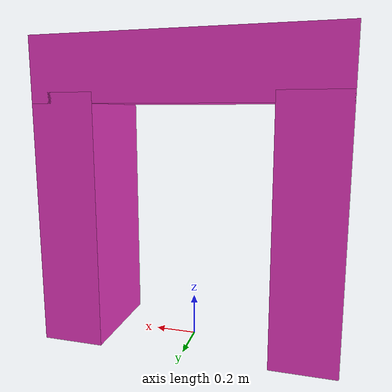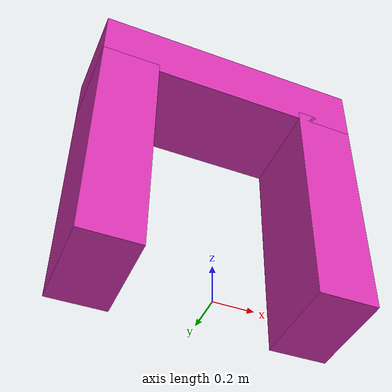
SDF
<?xml version="1.0"?>
<sdf version="1.7">
  <model name="xgc2_geom_arch">
    <link name="body">
      <kinematic>true</kinematic>
      <gravity>false</gravity>
      <collision name="left_pillar">
        <pose>-0.55 0 0.6 0 0 0</pose>
        <geometry><box><size>0.3 0.5 1.2</size></box></geometry>
      </collision>
      <collision name="right_pillar">
        <pose>0.55 0 0.6 0 0 0</pose>
        <geometry><box><size>0.3 0.5 1.2</size></box></geometry>
      </collision>
      <collision name="lintel">
        <pose>0 0 1.3 0 0 0</pose>
        <geometry><box><size>1.4 0.5 0.3</size></box></geometry>
      </collision>
      <visual name="left_pillar">
        <pose>-0.55 0 0.6 0 0 0</pose>
        <geometry><box><size>0.3 0.5 1.2</size></box></geometry>
        <material><ambient>0.85 0.2 0.7 1</ambient><diffuse>0.85 0.2 0.7 1</diffuse></material>
      </visual>
      <visual name="right_pillar">
        <pose>0.55 0 0.6 0 0 0</pose>
        <geometry><box><size>0.3 0.5 1.2</size></box></geometry>
        <material><ambient>0.85 0.2 0.7 1</ambient><diffuse>0.85 0.2 0.7 1</diffuse></material>
      </visual>
      <visual name="lintel">
        <pose>0 0 1.3 0 0 0</pose>
        <geometry><box><size>1.4 0.5 0.3</size></box></geometry>
        <material><ambient>0.85 0.2 0.7 1</ambient><diffuse>0.85 0.2 0.7 1</diffuse></material>
      </visual>
    </link>
  </model>
</sdf>
